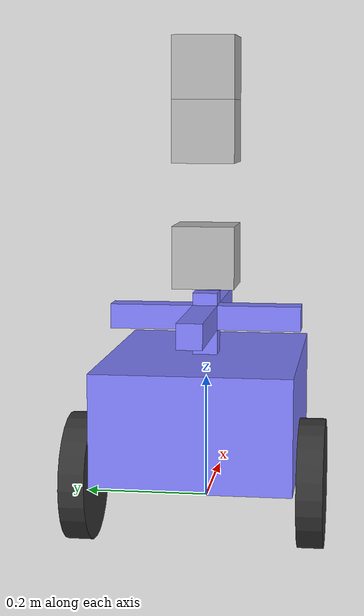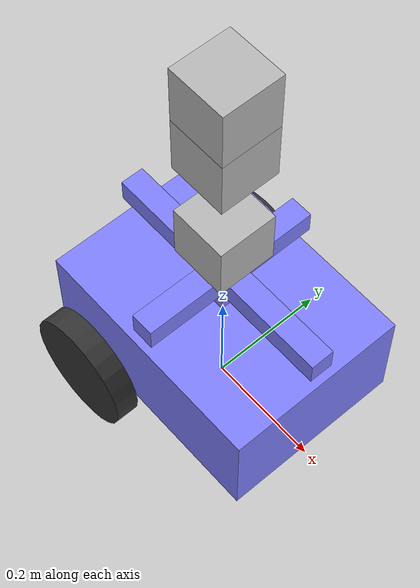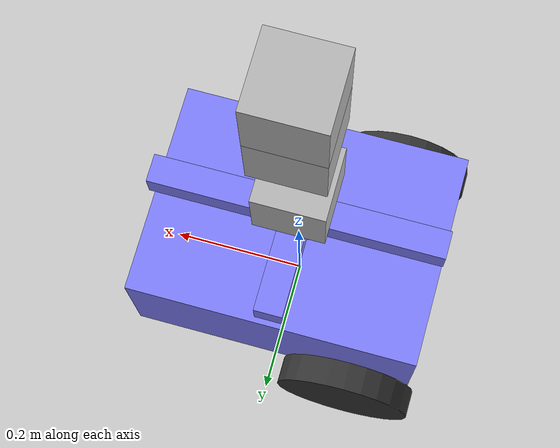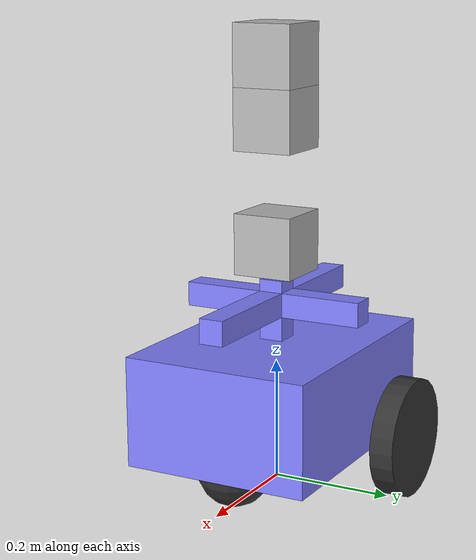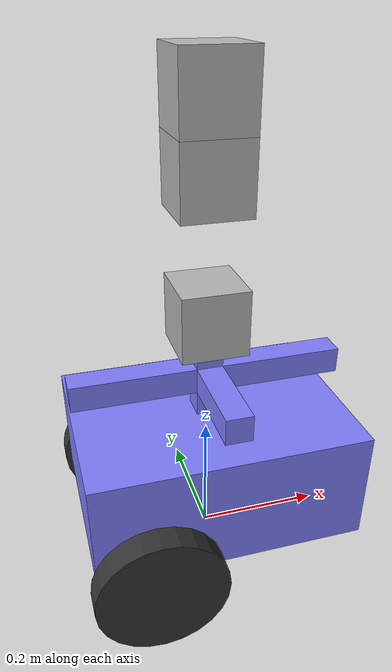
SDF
<?xml version="1.0" ?>
<sdf version="1.8">
    <model name='robot_lidar'>
      <link name='base'>
        <pose>0.0 0.0 0.15000000000000002 0 -0 0</pose>
        <inertial>
          <mass>1.14395</mass>
          <inertia>
            <ixx>0.26164</ixx>
            <ixy>0</ixy>
            <ixz>0</ixz>
            <iyy>0.3416519</iyy>
            <iyz>0</iyz>
            <izz>0.161014</izz>
          </inertia>
        </inertial>
        <visual name='visual_base'>
          <geometry>
            <box>
              <size>0.42 0.31 0.18</size>
            </box>
          </geometry>
          <material>
            <ambient>0.5 0.5 1.0 1</ambient>
            <diffuse>0.5 0.5 1.0 1</diffuse>
            <specular>0.0 0.0 1.0 1</specular>
          </material>
        </visual>
        <collision name='collision_base'>
          <geometry>
            <box>
              <size>0.42 0.31 0.18</size>
            </box>
          </geometry>
        </collision>
      </link>

      <link name='drivewhl_l'>
        <pose>-0.12 0.18 0.06 1.5707 0 0</pose>
        <inertial>
          <mass>0.5</mass>
          <inertia>
            <ixx>0.00145833</ixx>
            <ixy>0</ixy>
            <ixz>0</ixz>
            <iyy>0.00145833</iyy>
            <iyz>0</iyz>
            <izz>0.0025</izz>
          </inertia>
        </inertial>
        <visual name='visual_drivewhl_l'>
          <geometry>
            <cylinder>
              <radius>0.1</radius>
              <length>0.04</length>
            </cylinder>
          </geometry>
          <material>
            <ambient>0.2 0.2 0.2 1</ambient>
            <diffuse>0.2 0.2 0.2 1</diffuse>
            <specular>0.2 0.2 0.2 1</specular>
          </material>
        </visual>
        <collision name='collision_drivewhl_l'>
          <geometry>
            <cylinder>
              <radius>0.1</radius>
              <length>0.04</length>
            </cylinder>
          </geometry>
        </collision>
      </link>

      <link name='drivewhl_r'>
        <pose>-0.12 -0.18 0.06 1.5707 0 0</pose>
        <inertial>
          <mass>2</mass>
          <inertia>
            <ixx>0.00145833</ixx>
            <ixy>0</ixy>
            <ixz>0</ixz>
            <iyy>0.00145833</iyy>
            <iyz>0</iyz>
            <izz>0.0025</izz>
          </inertia>
        </inertial>
        <visual name='visual_drivewhl_r'>
          <geometry>
            <cylinder>
              <radius>0.1</radius>
              <length>0.04</length>
            </cylinder>
          </geometry>
          <material>
            <ambient>0.2 0.2 0.2 1</ambient>
            <diffuse>0.2 0.2 0.2 1</diffuse>
            <specular>0.2 0.2 0.2 1</specular>
          </material>
        </visual>
        <collision name='collision_drivewhl_r'>
          <geometry>
            <cylinder>
              <radius>0.1</radius>
              <length>0.04</length>
            </cylinder>
          </geometry>
        </collision>
      </link>

      <link name='caster'>
        <pose>0.14 0.0 0.06 0 -0 0</pose>
        <inertial>
          <mass>0.5</mass>
          <inertia>
            <ixx>0.1</ixx>
            <ixy>0</ixy>
            <ixz>0</ixz>
            <iyy>0.1</iyy>
            <iyz>0</iyz>
            <izz>0.1</izz>
          </inertia>
        </inertial>
        <visual name='visual_caster'>
          <geometry>
            <sphere>
              <radius>0.06</radius>
            </sphere>
          </geometry>
          <material>
            <ambient>0.2 0.2 0.2 1</ambient>
            <diffuse>0.2 0.2 0.2 1</diffuse>
            <specular>0.2 0.2 0.2 1</specular>
          </material>
        </visual>
        <collision name='collision_caster'>
          <geometry>
            <sphere>
              <radius>0.06</radius>
            </sphere>
          </geometry>
        </collision>
      </link>

      <joint name='drivewhl_l_joint' type='revolute'>
        <parent>base</parent>
        <child>drivewhl_l</child>
        <axis>
          <xyz>0 0 1</xyz>
          <limit>
            <lower>-1.79769e+308</lower>
            <upper>1.79769e+308</upper>
          </limit>
        </axis>
      </joint>

      <joint name='drivewhl_r_joint' type='revolute'>
        <parent>base</parent>
        <child>drivewhl_r</child>
        <axis>
          <xyz>0 0 1</xyz>
          <limit>
            <lower>-1.79769e+308</lower>
            <upper>1.79769e+308</upper>
          </limit>
        </axis>
      </joint>

      <joint name='caster_wheel' type='ball'>
        <parent>base</parent>
        <child>caster</child>
      </joint>

      <link name="rod">
        <pose>0.0 0.0 0.29 0 -0 0</pose>
        <inertial>
          <mass>0.1</mass>
          <inertia>
            <ixx>0.26164</ixx>
            <ixy>0</ixy>
            <ixz>0</ixz>
            <iyy>0.3416519</iyy>
            <iyz>0</iyz>
            <izz>0.161014</izz>
          </inertia>
        </inertial>
        <visual name='visual_rod'>
          <geometry>
            <box>
              <size>0.04 0.04 0.1</size>
            </box>
          </geometry>
          <material>
            <ambient>0.5 0.5 1.0 1</ambient>
            <diffuse>0.5 0.5 1.0 1</diffuse>
            <specular>0.0 0.0 1.0 1</specular>
          </material>
        </visual>
        <collision name='collision_rod'>
          <geometry>
            <box>
              <size>0.04 0.04 0.1</size>
            </box>
          </geometry>
        </collision>
      </link>

      <joint name="rod_joint" type="fixed">
        <parent>base</parent>
        <child>rod</child>
      </joint>

      <link name="hor_thing">
        <pose>0.0 0.0 0.3 0 -0 0</pose>
        <inertial>
          <mass>0.1</mass>
          <inertia>
            <ixx>0.26164</ixx>
            <ixy>0</ixy>
            <ixz>0</ixz>
            <iyy>0.3416519</iyy>
            <iyz>0</iyz>
            <izz>0.161014</izz>
          </inertia>
        </inertial>
        <visual name='visual_hor_thing'>
          <geometry>
            <box>
              <size>0.04 0.31 0.04</size>
            </box>
          </geometry>
          <material>
            <ambient>0.5 0.5 1.0 1</ambient>
            <diffuse>0.5 0.5 1.0 1</diffuse>
            <specular>0.0 0.0 1.0 1</specular>
          </material>
        </visual>
        <collision name='collision_hor_thing'>
          <geometry>
            <box>
              <size>0.04 0.31 0.04</size>
            </box>
          </geometry>
        </collision>
      </link>

      <joint name="hor_thing_joint" type="fixed">
        <parent>rod</parent>
        <child>hor_thing</child>
      </joint>

      <link name="ver_thing">
        <pose>0.0 0.0 0.3 0 -0 0</pose>
        <inertial>
          <mass>0.1</mass>
          <inertia>
            <ixx>0.26164</ixx>
            <ixy>0</ixy>
            <ixz>0</ixz>
            <iyy>0.3416519</iyy>
            <iyz>0</iyz>
            <izz>0.161014</izz>
          </inertia>
        </inertial>
        <visual name='visual_ver_thing'>
          <geometry>
            <box>
              <size>0.42 0.04 0.04</size>
            </box>
          </geometry>
          <material>
            <ambient>0.5 0.5 1.0 1</ambient>
            <diffuse>0.5 0.5 1.0 1</diffuse>
            <specular>0.0 0.0 1.0 1</specular>
          </material>
        </visual>
        <collision name='collision_ver_thing'>
          <geometry>
            <box>
              <size>0.42 0.04 0.04</size>
            </box>
          </geometry>
        </collision>
      </link>

      <joint name="ver_thing_joint" type="fixed">
        <parent>rod</parent>
        <child>ver_thing</child>
      </joint>

      <link name="lidar_link">
        <pose>0 0 0.4 0 0 0</pose>
        <inertial>
          <mass>0.1</mass>
          <inertia>
            <ixx>0.000166667</ixx>
            <iyy>0.000166667</iyy>
            <izz>0.000166667</izz>
          </inertia>
        </inertial>
        <collision name="collision">
          <geometry>
            <box>
              <size>0.1 0.1 0.1</size>
            </box>
          </geometry>
        </collision>
        <visual name="visual">
          <geometry>
            <box>
              <size>0.1 0.1 0.1</size>
            </box>
          </geometry>
        </visual>
        <sensor name='gpu_lidar' type='gpu_lidar'>
          <pose>0 0 0 0 0 0</pose>
          <topic>scan</topic>
          <ignition_frame_id>robot_lidar/lidar_link</ignition_frame_id>
          <update_rate>10</update_rate>
          <lidar>
            <scan>
              <horizontal>
                <samples>640</samples>
                <resolution>1</resolution>
                <min_angle>-1.396263</min_angle>
                <max_angle>1.396263</max_angle>
              </horizontal>
              <vertical>
                <samples>1</samples>
                <resolution>1</resolution>
                <min_angle>0.0</min_angle>
                <max_angle>0.0</max_angle>
              </vertical>
            </scan>
            <range>
              <min>0.08</min>
              <max>10.0</max>
              <resolution>0.01</resolution>
            </range>
          </lidar>
          <visualize>true</visualize>
        </sensor>
      </link>

      <joint name='lidar_joint' type='fixed'>
        <parent>ver_thing</parent>
        <child>lidar_link</child>
      </joint>

      <link name="depth_cam_link">
        <pose>0 0 0.6 0 0 0</pose>
        <inertial>
          <mass>0.1</mass>
          <inertia>
            <ixx>0.000166667</ixx>
            <iyy>0.000166667</iyy>
            <izz>0.000166667</izz>
          </inertia>
        </inertial>
        <collision name="collision">
          <geometry>
            <box>
              <size>0.1 0.1 0.1</size>
            </box>
          </geometry>
        </collision>
        <visual name="visual">
          <geometry>
            <box>
              <size>0.1 0.1 0.1</size>
            </box>
          </geometry>
        </visual>
        <sensor name="depth" type="depth_camera">
          <ignition_frame_id>robot_lidar/depth_cam_link</ignition_frame_id>
          <pose>0 0.0175 0.0125 0 0 0</pose>
          <update_rate>6</update_rate>
          <always_on>0</always_on>
          <camera>
            <horizontal_fov>1.51843645</horizontal_fov>
            <image>
              <width>848</width>
              <height>480</height>
              <format>R_FLOAT32</format>
            </image>
            <clip>
              <near>0.1</near>
              <far>10</far>
            </clip>
            <lens>
              <intrinsics>
                <fx>421.61578369140625</fx>
                <fy>421.61578369140625</fy>
                <cx>422.2854309082031</cx>
                <cy>236.57237243652344</cy>
                <s>0</s>
              </intrinsics>
            </lens>
          </camera>
      </sensor>
      </link>

      <joint name='depth_cam_joint' type='fixed'>
        <parent>ver_thing</parent>
        <child>depth_cam_link</child>
      </joint>

       <link name="imu_cam_link">
        <pose>0 0 0.7 0 0 0</pose>
        <inertial>
          <mass>0.1</mass>
          <inertia>
            <ixx>0.000166667</ixx>
            <iyy>0.000166667</iyy>
            <izz>0.000166667</izz>
          </inertia>
        </inertial>
        <collision name="collision">
          <geometry>
            <box>
              <size>0.1 0.1 0.1</size>
            </box>
          </geometry>
        </collision>
        <visual name="visual">
          <geometry>
            <box>
              <size>0.1 0.1 0.1</size>
            </box>
          </geometry>
        </visual>
        <sensor name="imu_sensor" type="imu">
            <always_on>1</always_on>
            <update_rate>1</update_rate>
            <visualize>true</visualize>
            <topic>imu</topic>
        </sensor>
      </link>

      <joint name='imu_cam_joint' type='fixed'>
        <parent>ver_thing</parent>
        <child>imu_cam_link</child>
      </joint>

      <plugin
        filename="ignition-gazebo-diff-drive-system"
        name="ignition::gazebo::systems::DiffDrive">
        <left_joint>drivewhl_r_joint</left_joint>
        <right_joint>drivewhl_l_joint</right_joint>
        <wheel_separation>0.36</wheel_separation>
        <wheel_radius>0.1</wheel_radius>
        <odom_publish_frequency>1</odom_publish_frequency>
        <max_linear_acceleration>1</max_linear_acceleration>
        <min_linear_acceleration>-1</min_linear_acceleration>
        <max_angular_acceleration>2</max_angular_acceleration>
        <min_angular_acceleration>-2</min_angular_acceleration>
        <max_linear_velocity>0.5</max_linear_velocity>
        <min_linear_velocity>-0.5</min_linear_velocity>
        <max_angular_velocity>1</max_angular_velocity>
        <min_angular_velocity>-1</min_angular_velocity>
      </plugin>

      <plugin
        filename="gz-sim-joint-state-publisher-system"
        name="gz::sim::systems::JointStatePublisher">
      </plugin>

      <plugin
        filename="gz-sim-pose-publisher-system"
        name="gz::sim::systems::PosePublisher">
        <publish_link_pose>true</publish_link_pose>
        <use_pose_vector_msg>true</use_pose_vector_msg>
        <static_publisher>true</static_publisher>
        <static_update_frequency>1</static_update_frequency>
      </plugin>

      <plugin
        filename="gz-sim-odometry-publisher-system"
        name="gz::sim::systems::OdometryPublisher">
        <odom_frame>robot_lidar/odom</odom_frame>
        <robot_base_frame>robot_lidar</robot_base_frame>
      </plugin>
    </model>
</sdf>
